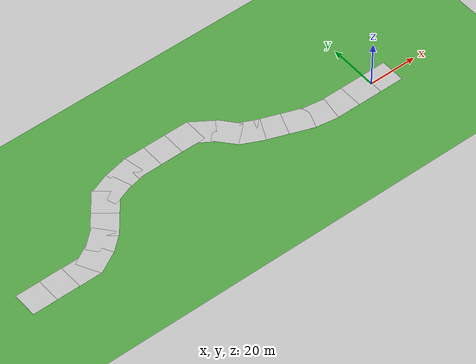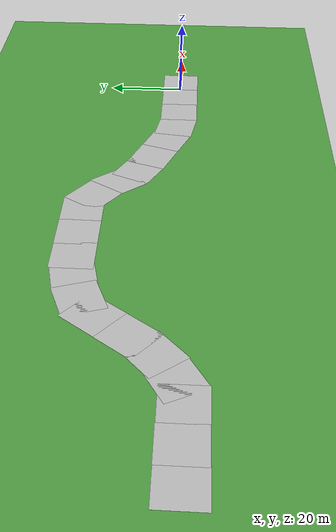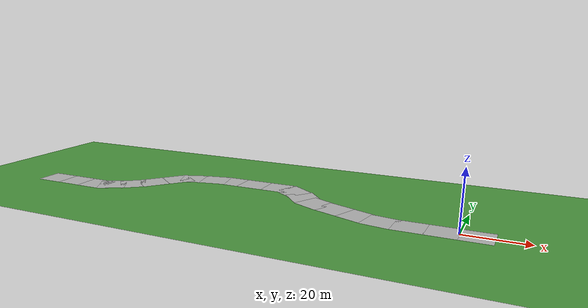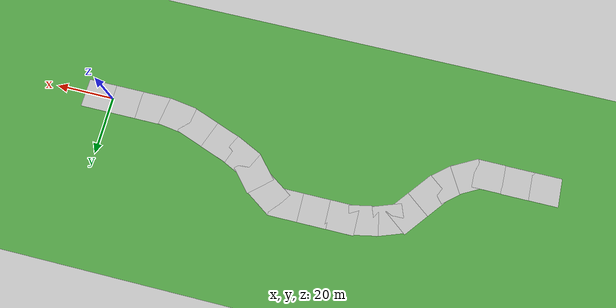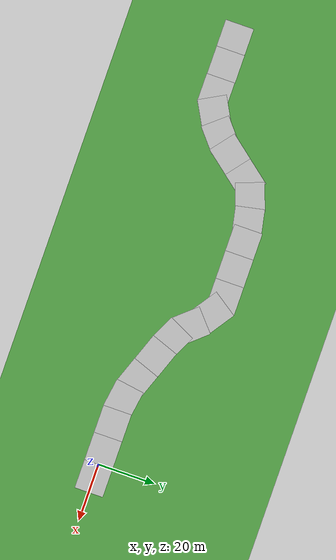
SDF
<sdf version="1.7">
 <world name="default">
  <light name="sun" type="directional">
   <pose>0 0 10 0 -0 0</pose>
   <diffuse>0.8 0.8 0.8 1</diffuse>
   <specular>0.2 0.2 0.2 1</specular>
   <attenuation>
    <range>1000</range>
    <constant>0.9</constant>
    <linear>0.01</linear>
    <quadratic>0.001</quadratic>
   </attenuation>
   <direction>-0.5 0.1 -0.9</direction>
   <spot><inner_angle>0</inner_angle><outer_angle>0</outer_angle><falloff>0</falloff></spot>
  </light>
  <gravity>0 0 -9.8</gravity>
  <magnetic_field>6e-06 2.3e-05 -4.2e-05</magnetic_field>
  <atmosphere type="adiabatic"/>
  <physics type="ode">
   <max_step_size>0.001</max_step_size>
   <real_time_factor>1</real_time_factor>
   <real_time_update_rate>1000</real_time_update_rate>
  </physics>
  <scene><ambient>0.4 0.4 0.4 1</ambient><background>0.7 0.7 0.7 1</background><shadows>1</shadows></scene>
  <spherical_coordinates>
   <surface_model>EARTH_WGS84</surface_model>
   <latitude_deg>0</latitude_deg>
   <longitude_deg>0</longitude_deg>
   <elevation>0</elevation>
   <heading_deg>0</heading_deg>
  </spherical_coordinates>
  <model name="ground_plane">
   <static>1</static>
   <link name="link">
    <collision name="collision">
     <geometry><plane><normal>0 0 1</normal><size>5000 5000</size></plane></geometry>
     <surface><friction><ode><mu>1</mu><mu2>1</mu2></ode></friction></surface>
    </collision>
    <visual name="grass">
     <pose>0 0 -0.1 0 -0 0</pose>
     <cast_shadows>0</cast_shadows>
     <geometry><plane><normal>0 0 1</normal><size>5000 5000</size></plane></geometry>
     <material>
      <script><uri>file://media/materials/scripts/gazebo.material</uri><name>Gazebo/Grass</name></script>
     </material>
    </visual>
   </link>
  </model>
  <model name="road_straight_0">
   <static>1</static>
   <link name="link">
    <collision name="collision">
     <geometry><plane><normal>0 0 1</normal><size>10 10</size></plane></geometry>
     <surface><friction><ode><mu>75</mu><mu2>75</mu2></ode></friction></surface>
    </collision>
    <visual name="visual">
     <cast_shadows>0</cast_shadows>
     <geometry><plane><normal>0 0 1</normal><size>10 10</size></plane></geometry>
     <material>
      <script>
       <uri>model://road_straight/materials/scripts</uri>
       <uri>model://road_straight/materials/textures</uri>
       <name>road_straight/Image</name>
      </script>
     </material>
    </visual>
   </link>
   <pose>5.029 0.051187 0 0 -0 0</pose>
  </model>
  <model name="road_straight_1">
   <static>1</static>
   <link name="link">
    <collision name="collision">
     <geometry><plane><normal>0 0 1</normal><size>10 10</size></plane></geometry>
     <surface><friction><ode><mu>75</mu><mu2>75</mu2></ode></friction></surface>
    </collision>
    <visual name="visual">
     <cast_shadows>0</cast_shadows>
     <geometry><plane><normal>0 0 1</normal><size>10 10</size></plane></geometry>
     <material>
      <script>
       <uri>model://road_straight/materials/scripts</uri>
       <uri>model://road_straight/materials/textures</uri>
       <name>road_straight/Image</name>
      </script>
     </material>
    </visual>
   </link>
   <pose>-4.77848 0.046101 0 0 -0 0</pose>
  </model>
  <model name="road_straight">
   <static>1</static>
   <link name="link">
    <collision name="collision">
     <geometry><plane><normal>0 0 1</normal><size>10 10</size></plane></geometry>
     <surface><friction><ode><mu>75</mu><mu2>75</mu2></ode></friction></surface>
    </collision>
    <visual name="visual">
     <cast_shadows>0</cast_shadows>
     <geometry><plane><normal>0 0 1</normal><size>10 10</size></plane></geometry>
     <material>
      <script>
       <uri>model://road_straight/materials/scripts</uri>
       <uri>model://road_straight/materials/textures</uri>
       <name>road_straight/Image</name>
      </script>
     </material>
    </visual>
   </link>
   <pose>-14.4111 0.058177 0 0 -0 0</pose>
  </model>
  <model name="road_straight_2">
   <static>1</static>
   <link name="link">
    <collision name="collision">
     <geometry><plane><normal>0 0 1</normal><size>10 10</size></plane></geometry>
     <surface><friction><ode><mu>75</mu><mu2>75</mu2></ode></friction></surface>
    </collision>
    <visual name="visual">
     <cast_shadows>0</cast_shadows>
     <geometry><plane><normal>0 0 1</normal><size>10 10</size></plane></geometry>
     <material>
      <script>
       <uri>model://road_straight/materials/scripts</uri>
       <uri>model://road_straight/materials/textures</uri>
       <name>road_straight/Image</name>
      </script>
     </material>
    </visual>
   </link>
   <pose>-23.5374 0.68633 0 0 0 -0.15</pose>
  </model>
  <model name="road_straight_3">
   <static>1</static>
   <link name="link">
    <collision name="collision">
     <geometry><plane><normal>0 0 1</normal><size>10 10</size></plane></geometry>
     <surface><friction><ode><mu>75</mu><mu2>75</mu2></ode></friction></surface>
    </collision>
    <visual name="visual">
     <cast_shadows>0</cast_shadows>
     <geometry><plane><normal>0 0 1</normal><size>10 10</size></plane></geometry>
     <material>
      <script>
       <uri>model://road_straight/materials/scripts</uri>
       <uri>model://road_straight/materials/textures</uri>
       <name>road_straight/Image</name>
      </script>
     </material>
    </visual>
   </link>
   <pose>-31.4062 2.7582 0 0 0 -0.35</pose>
  </model>
  <model name="road_straight_4">
   <static>1</static>
   <link name="link">
    <collision name="collision">
     <geometry><plane><normal>0 0 1</normal><size>10 10</size></plane></geometry>
     <surface><friction><ode><mu>75</mu><mu2>75</mu2></ode></friction></surface>
    </collision>
    <visual name="visual">
     <cast_shadows>0</cast_shadows>
     <geometry><plane><normal>0 0 1</normal><size>10 10</size></plane></geometry>
     <material>
      <script>
       <uri>model://road_straight/materials/scripts</uri>
       <uri>model://road_straight/materials/textures</uri>
       <name>road_straight/Image</name>
      </script>
     </material>
    </visual>
   </link>
   <pose>-40.7333 6.20793 0 0 0 -0.35</pose>
  </model>
  <model name="road_straight_5">
   <static>1</static>
   <link name="link">
    <collision name="collision">
     <geometry><plane><normal>0 0 1</normal><size>10 10</size></plane></geometry>
     <surface><friction><ode><mu>75</mu><mu2>75</mu2></ode></friction></surface>
    </collision>
    <visual name="visual">
     <cast_shadows>0</cast_shadows>
     <geometry><plane><normal>0 0 1</normal><size>10 10</size></plane></geometry>
     <material>
      <script>
       <uri>model://road_straight/materials/scripts</uri>
       <uri>model://road_straight/materials/textures</uri>
       <name>road_straight/Image</name>
      </script>
     </material>
    </visual>
   </link>
   <pose>-48.1868 9.33521 0 0 0 -0.45</pose>
  </model>
  <model name="road_straight_6">
   <static>1</static>
   <link name="link">
    <collision name="collision">
     <geometry><plane><normal>0 0 1</normal><size>10 10</size></plane></geometry>
     <surface><friction><ode><mu>75</mu><mu2>75</mu2></ode></friction></surface>
    </collision>
    <visual name="visual">
     <cast_shadows>0</cast_shadows>
     <geometry><plane><normal>0 0 1</normal><size>10 10</size></plane></geometry>
     <material>
      <script>
       <uri>model://road_straight/materials/scripts</uri>
       <uri>model://road_straight/materials/textures</uri>
       <name>road_straight/Image</name>
      </script>
     </material>
    </visual>
   </link>
   <pose>-54.3375 14.1305 0 0 0 -0.85</pose>
  </model>
  <model name="road_straight_7">
   <static>1</static>
   <link name="link">
    <collision name="collision">
     <geometry><plane><normal>0 0 1</normal><size>10 10</size></plane></geometry>
     <surface><friction><ode><mu>75</mu><mu2>75</mu2></ode></friction></surface>
    </collision>
    <visual name="visual">
     <cast_shadows>0</cast_shadows>
     <geometry><plane><normal>0 0 1</normal><size>10 10</size></plane></geometry>
     <material>
      <script>
       <uri>model://road_straight/materials/scripts</uri>
       <uri>model://road_straight/materials/textures</uri>
       <name>road_straight/Image</name>
      </script>
     </material>
    </visual>
   </link>
   <pose>-61.0448 19.6928 0 0 0 -0.6</pose>
  </model>
  <model name="road_straight_8">
   <static>1</static>
   <link name="link">
    <collision name="collision">
     <geometry><plane><normal>0 0 1</normal><size>10 10</size></plane></geometry>
     <surface><friction><ode><mu>75</mu><mu2>75</mu2></ode></friction></surface>
    </collision>
    <visual name="visual">
     <cast_shadows>0</cast_shadows>
     <geometry><plane><normal>0 0 1</normal><size>10 10</size></plane></geometry>
     <material>
      <script>
       <uri>model://road_straight/materials/scripts</uri>
       <uri>model://road_straight/materials/textures</uri>
       <name>road_straight/Image</name>
      </script>
     </material>
    </visual>
   </link>
   <pose>-67.2998 21.6485 0 0 -0 0</pose>
  </model>
  <model name="road_straight_9">
   <static>1</static>
   <link name="link">
    <collision name="collision">
     <geometry><plane><normal>0 0 1</normal><size>10 10</size></plane></geometry>
     <surface><friction><ode><mu>75</mu><mu2>75</mu2></ode></friction></surface>
    </collision>
    <visual name="visual">
     <cast_shadows>0</cast_shadows>
     <geometry><plane><normal>0 0 1</normal><size>10 10</size></plane></geometry>
     <material>
      <script>
       <uri>model://road_straight/materials/scripts</uri>
       <uri>model://road_straight/materials/textures</uri>
       <name>road_straight/Image</name>
      </script>
     </material>
    </visual>
   </link>
   <pose>-77.1752 21.6463 0 0 -0 0</pose>
  </model>
  <model name="road_straight_10">
   <static>1</static>
   <link name="link">
    <collision name="collision">
     <geometry><plane><normal>0 0 1</normal><size>10 10</size></plane></geometry>
     <surface><friction><ode><mu>75</mu><mu2>75</mu2></ode></friction></surface>
    </collision>
    <visual name="visual">
     <cast_shadows>0</cast_shadows>
     <geometry><plane><normal>0 0 1</normal><size>10 10</size></plane></geometry>
     <material>
      <script>
       <uri>model://road_straight/materials/scripts</uri>
       <uri>model://road_straight/materials/textures</uri>
       <name>road_straight/Image</name>
      </script>
     </material>
    </visual>
   </link>
   <pose>-86.5369 21.6269 0 0 -0 0</pose>
  </model>
  <model name="road_straight_11">
   <static>1</static>
   <link name="link">
    <collision name="collision">
     <geometry><plane><normal>0 0 1</normal><size>10 10</size></plane></geometry>
     <surface><friction><ode><mu>75</mu><mu2>75</mu2></ode></friction></surface>
    </collision>
    <visual name="visual">
     <cast_shadows>0</cast_shadows>
     <geometry><plane><normal>0 0 1</normal><size>10 10</size></plane></geometry>
     <material>
      <script>
       <uri>model://road_straight/materials/scripts</uri>
       <uri>model://road_straight/materials/textures</uri>
       <name>road_straight/Image</name>
      </script>
     </material>
    </visual>
   </link>
   <pose>-93.655 20.7816 0 0 -0 0.2</pose>
  </model>
  <model name="road_straight_12">
   <static>1</static>
   <link name="link">
    <collision name="collision">
     <geometry><plane><normal>0 0 1</normal><size>10 10</size></plane></geometry>
     <surface><friction><ode><mu>75</mu><mu2>75</mu2></ode></friction></surface>
    </collision>
    <visual name="visual">
     <cast_shadows>0</cast_shadows>
     <geometry><plane><normal>0 0 1</normal><size>10 10</size></plane></geometry>
     <material>
      <script>
       <uri>model://road_straight/materials/scripts</uri>
       <uri>model://road_straight/materials/textures</uri>
       <name>road_straight/Image</name>
      </script>
     </material>
    </visual>
   </link>
   <pose>-101.824 18.5754 0 0 -0 0.35</pose>
  </model>
  <model name="road_straight_13">
   <static>1</static>
   <link name="link">
    <collision name="collision">
     <geometry><plane><normal>0 0 1</normal><size>10 10</size></plane></geometry>
     <surface><friction><ode><mu>75</mu><mu2>75</mu2></ode></friction></surface>
    </collision>
    <visual name="visual">
     <cast_shadows>0</cast_shadows>
     <geometry><plane><normal>0 0 1</normal><size>10 10</size></plane></geometry>
     <material>
      <script>
       <uri>model://road_straight/materials/scripts</uri>
       <uri>model://road_straight/materials/textures</uri>
       <name>road_straight/Image</name>
      </script>
     </material>
    </visual>
   </link>
   <pose>-107.072 15.1711 0 0 -0 0.9</pose>
  </model>
  <model name="road_straight_14">
   <static>1</static>
   <link name="link">
    <collision name="collision">
     <geometry><plane><normal>0 0 1</normal><size>10 10</size></plane></geometry>
     <surface><friction><ode><mu>75</mu><mu2>75</mu2></ode></friction></surface>
    </collision>
    <visual name="visual">
     <cast_shadows>0</cast_shadows>
     <geometry><plane><normal>0 0 1</normal><size>10 10</size></plane></geometry>
     <material>
      <script>
       <uri>model://road_straight/materials/scripts</uri>
       <uri>model://road_straight/materials/textures</uri>
       <name>road_straight/Image</name>
      </script>
     </material>
    </visual>
   </link>
   <pose>-113.292 7.39484 0 0 -0 0.9</pose>
  </model>
  <model name="road_straight_15">
   <static>1</static>
   <link name="link">
    <collision name="collision">
     <geometry><plane><normal>0 0 1</normal><size>10 10</size></plane></geometry>
     <surface><friction><ode><mu>75</mu><mu2>75</mu2></ode></friction></surface>
    </collision>
    <visual name="visual">
     <cast_shadows>0</cast_shadows>
     <geometry><plane><normal>0 0 1</normal><size>10 10</size></plane></geometry>
     <material>
      <script>
       <uri>model://road_straight/materials/scripts</uri>
       <uri>model://road_straight/materials/textures</uri>
       <name>road_straight/Image</name>
      </script>
     </material>
    </visual>
   </link>
   <pose>-118.355 2.13005 0 0 -0 0.7</pose>
  </model>
  <model name="road_straight_16">
   <static>1</static>
   <link name="link">
    <collision name="collision">
     <geometry><plane><normal>0 0 1</normal><size>10 10</size></plane></geometry>
     <surface><friction><ode><mu>75</mu><mu2>75</mu2></ode></friction></surface>
    </collision>
    <visual name="visual">
     <cast_shadows>0</cast_shadows>
     <geometry><plane><normal>0 0 1</normal><size>10 10</size></plane></geometry>
     <material>
      <script>
       <uri>model://road_straight/materials/scripts</uri>
       <uri>model://road_straight/materials/textures</uri>
       <name>road_straight/Image</name>
      </script>
     </material>
    </visual>
   </link>
   <pose>-125.053 -2.28427 0 0 -0 0.5</pose>
  </model>
  <model name="road_straight_17">
   <static>1</static>
   <link name="link">
    <collision name="collision">
     <geometry><plane><normal>0 0 1</normal><size>10 10</size></plane></geometry>
     <surface><friction><ode><mu>75</mu><mu2>75</mu2></ode></friction></surface>
    </collision>
    <visual name="visual">
     <cast_shadows>0</cast_shadows>
     <geometry><plane><normal>0 0 1</normal><size>10 10</size></plane></geometry>
     <material>
      <script>
       <uri>model://road_straight/materials/scripts</uri>
       <uri>model://road_straight/materials/textures</uri>
       <name>road_straight/Image</name>
      </script>
     </material>
    </visual>
   </link>
   <pose>-131.486 -3.95079 0 0 -0 0</pose>
  </model>
  <model name="road_straight_18">
   <static>1</static>
   <link name="link">
    <collision name="collision">
     <geometry><plane><normal>0 0 1</normal><size>10 10</size></plane></geometry>
     <surface><friction><ode><mu>75</mu><mu2>75</mu2></ode></friction></surface>
    </collision>
    <visual name="visual">
     <cast_shadows>0</cast_shadows>
     <geometry><plane><normal>0 0 1</normal><size>10 10</size></plane></geometry>
     <material>
      <script>
       <uri>model://road_straight/materials/scripts</uri>
       <uri>model://road_straight/materials/textures</uri>
       <name>road_straight/Image</name>
      </script>
     </material>
    </visual>
   </link>
   <pose>-141.319 -3.86273 0 0 -0 0</pose>
  </model>
  <model name="road_straight_19">
   <static>1</static>
   <link name="link">
    <collision name="collision">
     <geometry><plane><normal>0 0 1</normal><size>10 10</size></plane></geometry>
     <surface><friction><ode><mu>75</mu><mu2>75</mu2></ode></friction></surface>
    </collision>
    <visual name="visual">
     <cast_shadows>0</cast_shadows>
     <geometry><plane><normal>0 0 1</normal><size>10 10</size></plane></geometry>
     <material>
      <script>
       <uri>model://road_straight/materials/scripts</uri>
       <uri>model://road_straight/materials/textures</uri>
       <name>road_straight/Image</name>
      </script>
     </material>
    </visual>
   </link>
   <pose>-150.725 -3.88747 0 0 -0 0</pose>
  </model>
 </world>
</sdf>
